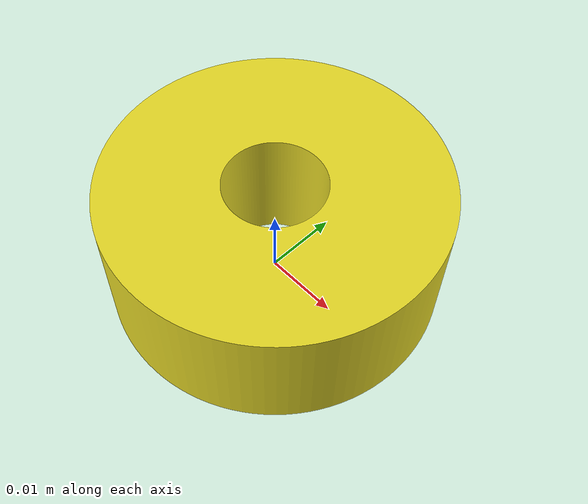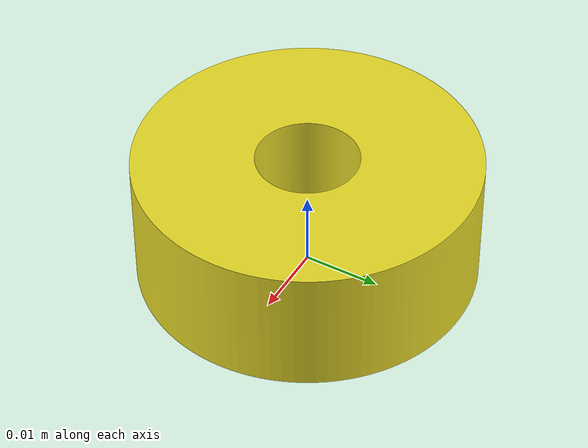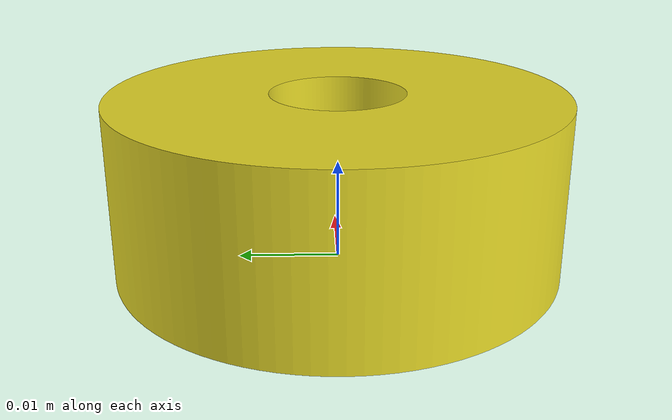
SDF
<sdf version='1.6'>
  <model name='hanoi_tower_d400'>
    <link name='token_d400_link'>
      <pose frame=''>0 0 0 0 -0 0</pose>
      <inertial>
        <pose frame=''>0 0 0.0085 0 -0 0</pose>
        <mass>0.45</mass>
        <inertia>
          <ixx>6.70875e-05</ixx>
          <ixy>0</ixy>
          <ixz>0</ixz>
          <iyy>6.70875e-05</iyy>
          <iyz>0</iyz>
          <izz>0.0001125</izz>
        </inertia>
      </inertial>
      <collision name='token_d400_link_fixed_joint_lump__collision_d400_b1_collision'>
        <pose frame=''>0 0 0.0085 0 -0 0</pose>
        <geometry>
          <mesh>
            <scale>1 1 1</scale>
            <uri>model://hanoi_tower_d400/meshes/token-400.stl</uri>
          </mesh>
        </geometry>
        <surface>
          <contact>
          <ode>
            <kp>1e15</kp>
            <kd>1e13</kd>
          </ode>
        </contact>
          <friction>
            <ode>
              <mu>10</mu>
              <mu2>10</mu2>
              <fdir1>1 1 1</fdir1>
            </ode>
          </friction>
          </surface>
      </collision>
      <visual name='token_d400_link_visual'>
        <pose frame=''>0 0 0.0085 0 -0 0</pose>
        <geometry>
          <mesh>
            <scale>1 1 1</scale>
            <uri>model://hanoi_tower_d400/meshes/token-400.dae</uri>
          </mesh>
        </geometry>
        <material>
          <script>
            <name>Gazebo/Yellow</name>
            <uri>file://media/materials/scripts/gazebo.material</uri>
          </script>
        </material>
      </visual>
      <gravity>1</gravity>
    </link>
    <plugin filename="libhanoi_tower_token_plugin.so" name="hanoi_tower_token_plugin">
      <mixamorig_RightHandIndex1_z>0.6</mixamorig_RightHandIndex1_z>
      <mixamorig_RightHandIndex2_z>0.8</mixamorig_RightHandIndex2_z>
      <mixamorig_RightHandIndex3_z>0.6</mixamorig_RightHandIndex3_z>
      <token_radius>0.040</token_radius>
    </plugin>
  </model>
</sdf>
